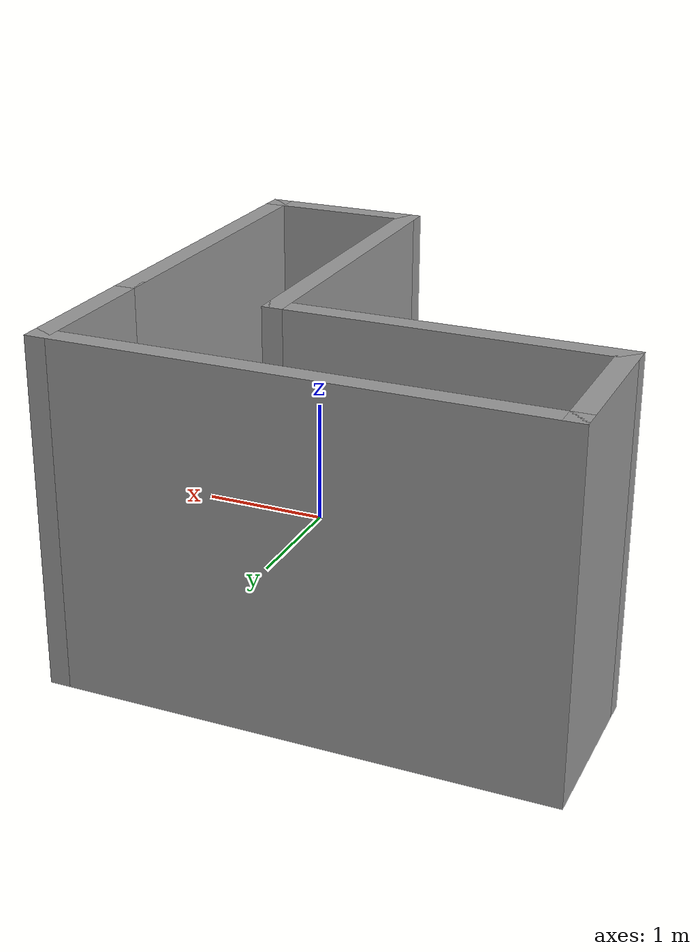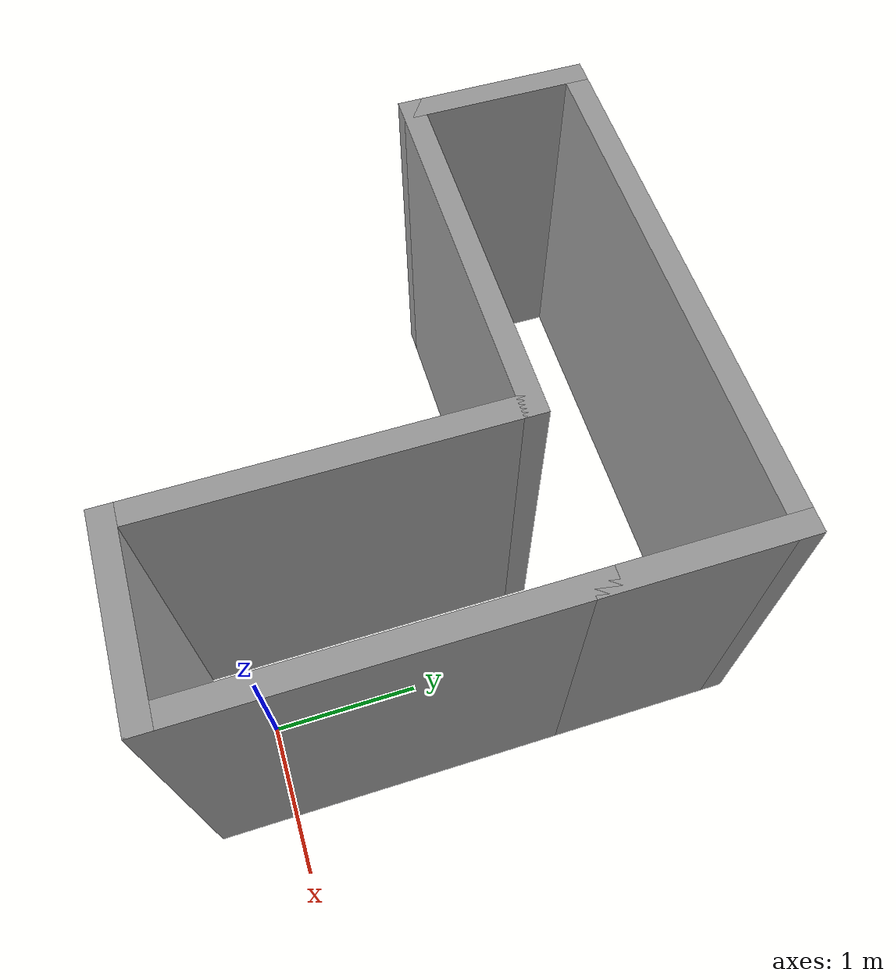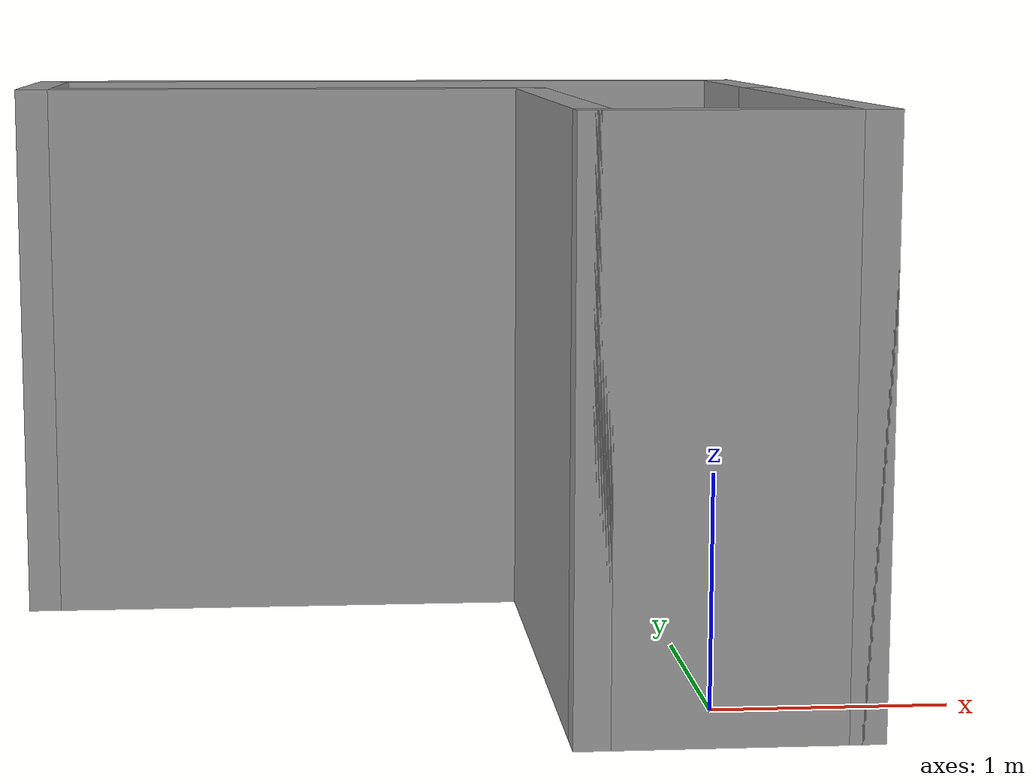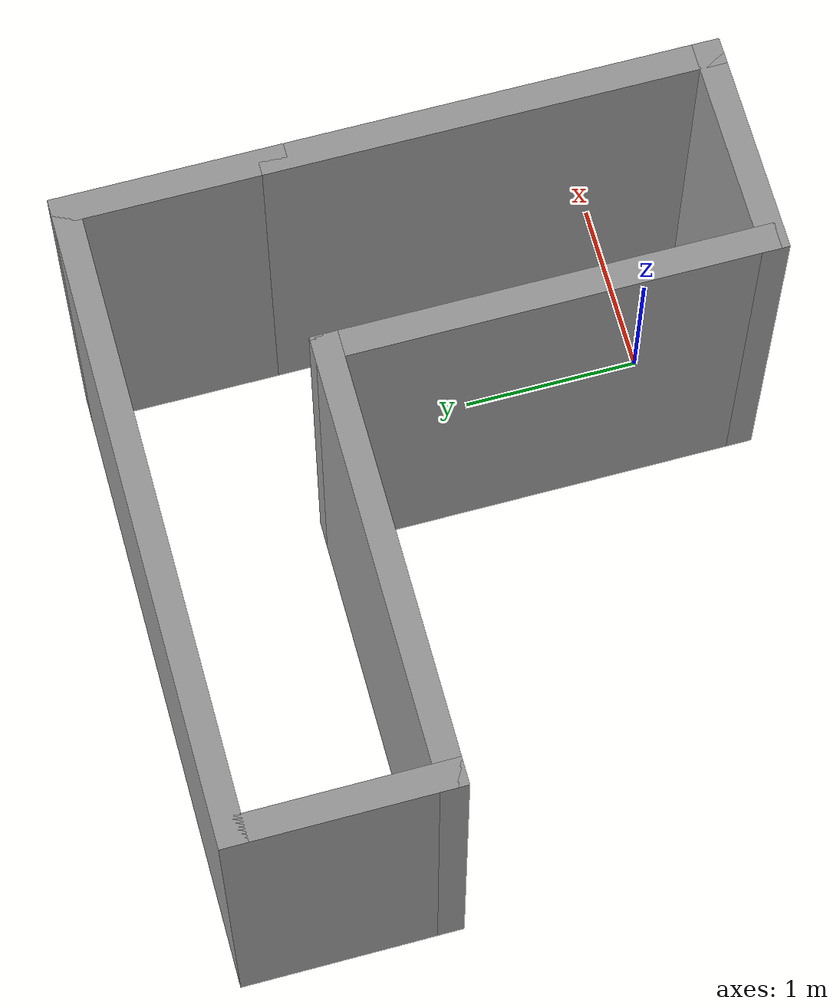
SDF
<?xml version='1.0'?>
<sdf version='1.7'>
  <model name='Maze_Small_Simple'>
    <pose>-1.185 1.295 0 0 -0 0</pose>
    <link name='Wall_12'>
      <collision name='Wall_12_Collision'>
        <geometry>
          <box>
            <size>1.25 0.15 2.5</size>
          </box>
        </geometry>
        <pose>0 0 1.25 0 -0 0</pose>
      </collision>
      <visual name='Wall_12_Visual'>
        <pose>0 0 1.25 0 -0 0</pose>
        <geometry>
          <box>
            <size>1.25 0.15 2.5</size>
          </box>
        </geometry>
        <material>
          <script>
            <uri>file://media/materials/scripts/gazebo.material</uri>
            <name>Gazebo/Grey</name>
          </script>
          <ambient>1 1 1 1</ambient>
        </material>
        <meta>
          <layer>0</layer>
        </meta>
      </visual>
      <pose>1.175 -1.725 0 0 -0 0</pose>
    </link>
    <link name='Wall_38'>
      <collision name='Wall_38_Collision'>
        <geometry>
          <box>
            <size>2.5 0.15 2.5</size>
          </box>
        </geometry>
        <pose>0 0 1.25 0 -0 0</pose>
      </collision>
      <visual name='Wall_38_Visual'>
        <pose>0 0 1.25 0 -0 0</pose>
        <geometry>
          <box>
            <size>2.5 0.15 2.5</size>
          </box>
        </geometry>
        <material>
          <script>
            <uri>file://media/materials/scripts/gazebo.material</uri>
            <name>Gazebo/Grey</name>
          </script>
          <ambient>1 1 1 1</ambient>
        </material>
        <meta>
          <layer>0</layer>
        </meta>
      </visual>
      <pose>0.625 -0.55 0 0 -0 1.5708</pose>
    </link>
    <link name='Wall_61'>
      <collision name='Wall_61_Collision'>
        <geometry>
          <box>
            <size>2.5 0.15 2.5</size>
          </box>
        </geometry>
        <pose>0 0 1.25 0 -0 0</pose>
      </collision>
      <visual name='Wall_61_Visual'>
        <pose>0 0 1.25 0 -0 0</pose>
        <geometry>
          <box>
            <size>2.5 0.15 2.5</size>
          </box>
        </geometry>
        <material>
          <script>
            <uri>file://media/materials/scripts/gazebo.material</uri>
            <name>Gazebo/Grey</name>
          </script>
          <ambient>1 1 1 1</ambient>
        </material>
        <meta>
          <layer>0</layer>
        </meta>
      </visual>
      <pose>-0.55 0.625 0 0 -0 3.14159</pose>
    </link>
    <link name='Wall_63'>
      <collision name='Wall_63_Collision'>
        <geometry>
          <box>
            <size>1.25 0.15 2.5</size>
          </box>
        </geometry>
        <pose>0 0 1.25 0 -0 0</pose>
      </collision>
      <visual name='Wall_63_Visual'>
        <pose>0 0 1.25 0 -0 0</pose>
        <geometry>
          <box>
            <size>1.25 0.15 2.5</size>
          </box>
        </geometry>
        <material>
          <script>
            <uri>file://media/materials/scripts/gazebo.material</uri>
            <name>Gazebo/Grey</name>
          </script>
          <ambient>1 1 1 1</ambient>
        </material>
        <meta>
          <layer>0</layer>
        </meta>
      </visual>
      <pose>-1.725 1.175 0 0 -0 1.5708</pose>
    </link>
    <link name='Wall_68'>
      <collision name='Wall_68_Collision'>
        <geometry>
          <box>
            <size>2.5 0.15 2.5</size>
          </box>
        </geometry>
        <pose>0 0 1.25 0 -0 0</pose>
      </collision>
      <visual name='Wall_68_Visual'>
        <pose>0 0 1.25 0 -0 0</pose>
        <geometry>
          <box>
            <size>2.5 0.15 2.5</size>
          </box>
        </geometry>
        <material>
          <script>
            <uri>file://media/materials/scripts/gazebo.material</uri>
            <name>Gazebo/Grey</name>
          </script>
          <ambient>1 1 1 1</ambient>
        </material>
        <meta>
          <layer>0</layer>
        </meta>
      </visual>
      <pose>1.725 -0.55 0 0 -0 1.5708</pose>
    </link>
    <link name='Wall_69'>
      <collision name='Wall_69_Collision'>
        <geometry>
          <box>
            <size>1.25 0.15 2.5</size>
          </box>
        </geometry>
        <pose>0 0 1.25 0 -0 0</pose>
      </collision>
      <visual name='Wall_69_Visual'>
        <pose>0 0 1.25 0 -0 0</pose>
        <geometry>
          <box>
            <size>1.25 0.15 2.5</size>
          </box>
        </geometry>
        <material>
          <script>
            <uri>file://media/materials/scripts/gazebo.material</uri>
            <name>Gazebo/Grey</name>
          </script>
          <ambient>1 1 1 1</ambient>
        </material>
        <meta>
          <layer>0</layer>
        </meta>
      </visual>
      <pose>1.725 1.175 0 0 -0 1.5708</pose>
    </link>
    <link name='Wall_70'>
      <collision name='Wall_70_Collision'>
        <geometry>
          <box>
            <size>3.6 0.15 2.5</size>
          </box>
        </geometry>
        <pose>0 0 1.25 0 -0 0</pose>
      </collision>
      <visual name='Wall_70_Visual'>
        <pose>0 0 1.25 0 -0 0</pose>
        <geometry>
          <box>
            <size>3.6 0.15 2.5</size>
          </box>
        </geometry>
        <material>
          <script>
            <uri>file://media/materials/scripts/gazebo.material</uri>
            <name>Gazebo/Grey</name>
          </script>
          <ambient>1 1 1 1</ambient>
        </material>
        <meta>
          <layer>0</layer>
        </meta>
      </visual>
      <pose>0 1.725 0 0 -0 3.14159</pose>
    </link>
    <static>1</static>
  </model>
</sdf>
